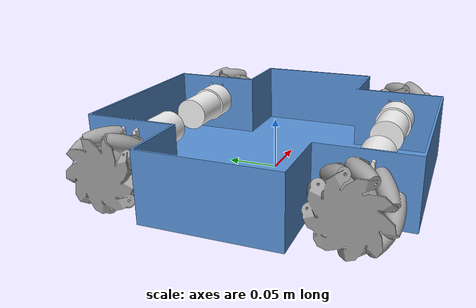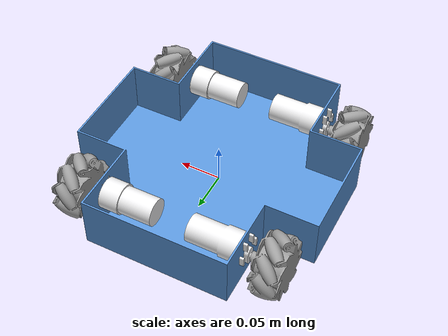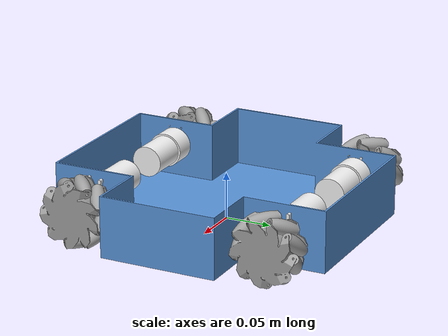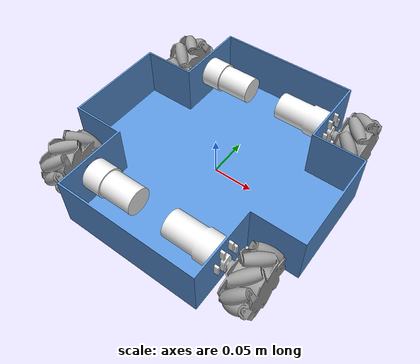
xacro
<?xml version="1.0" ?>
<robot name="mecanum" xmlns:xacro="http://www.ros.org/wiki/xacro">

<xacro:include filename="$(find mecanum_description)/urdf/materials.xacro" />
<xacro:include filename="$(find mecanum_description)/urdf/mecanum.trans" />
<xacro:include filename="$(find mecanum_description)/urdf/mecanum.gazebo" />
<link name="world_map"/>

<link name="base_link">
  <inertial>
    <origin xyz="1.873955310859947e-16 7.808147128583113e-16 0.01805489136483609" rpy="0 0 0"/>
    <mass value="2.2859243336943385"/>
    <inertia ixx="0.021335" iyy="0.019888" izz="0.039192" ixy="0.0" iyz="-0.0" ixz="0.0"/>
  </inertial>
  <visual>
    <origin xyz="0 0 0" rpy="0 0 0"/>
    <geometry>
      <mesh filename="package://mecanum_description/meshes/base_link.stl" scale="0.001 0.001 0.001"/>
    </geometry>
    <material name="aluminum_anodized_glossy_blue"/>
  </visual>
  <collision>
    <origin xyz="0 0 0" rpy="0 0 0"/>
    <geometry>
      <mesh filename="package://mecanum_description/meshes/base_link.stl" scale="0.001 0.001 0.001"/>
    </geometry>
  </collision>
</link>

<link name="Wheel_Motor_v8__3__1">
  <inertial>
    <origin xyz="-0.02895347584776023 -1.8749999902700765e-07 0.006877507255732572" rpy="0 0 0"/>
    <mass value="0.502933680999153"/>
    <inertia ixx="7.6e-05" iyy="0.00024" izz="0.000239" ixy="-0.0" iyz="0.0" ixz="2e-06"/>
  </inertial>
  <visual>
    <origin xyz="-0.086916 -0.106958 -0.03048" rpy="0 0 0"/>
    <geometry>
      <mesh filename="package://mecanum_description/meshes/Wheel_Motor_v8__3__1.stl" scale="0.001 0.001 0.001"/>
    </geometry>
    <material name="aluminum_satin"/>
  </visual>
  <collision>
    <origin xyz="-0.086916 -0.106958 -0.03048" rpy="0 0 0"/>
    <geometry>
      <mesh filename="package://mecanum_description/meshes/Wheel_Motor_v8__3__1.stl" scale="0.001 0.001 0.001"/>
    </geometry>
  </collision>
</link>

<link name="Wheel_Motor_v8__2__1">
  <inertial>
    <origin xyz="0.02895347584776023 -1.8750000098377573e-07 0.006877507255732572" rpy="0 0 0"/>
    <mass value="0.502933680999153"/>
    <inertia ixx="7.6e-05" iyy="0.00024" izz="0.000239" ixy="-0.0" iyz="-0.0" ixz="-2e-06"/>
  </inertial>
  <visual>
    <origin xyz="0.086916 -0.106958 -0.03048" rpy="0 0 0"/>
    <geometry>
      <mesh filename="package://mecanum_description/meshes/Wheel_Motor_v8__2__1.stl" scale="0.001 0.001 0.001"/>
    </geometry>
    <material name="aluminum_satin"/>
  </visual>
  <collision>
    <origin xyz="0.086916 -0.106958 -0.03048" rpy="0 0 0"/>
    <geometry>
      <mesh filename="package://mecanum_description/meshes/Wheel_Motor_v8__2__1.stl" scale="0.001 0.001 0.001"/>
    </geometry>
  </collision>
</link>

<link name="Wheel_Motor_v8__1__1">
  <inertial>
    <origin xyz="-0.028953475847760257 0.0005996017531267744 0.00685133626424822" rpy="0 0 0"/>
    <mass value="0.502933680999153"/>
    <inertia ixx="7.6e-05" iyy="0.00024" izz="0.000239" ixy="0.0" iyz="-0.0" ixz="2e-06"/>
  </inertial>
  <visual>
    <origin xyz="-0.086916 0.106958 -0.03048" rpy="0 0 0"/>
    <geometry>
      <mesh filename="package://mecanum_description/meshes/Wheel_Motor_v8__1__1.stl" scale="0.001 0.001 0.001"/>
    </geometry>
    <material name="aluminum_satin"/>
  </visual>
  <collision>
    <origin xyz="-0.086916 0.106958 -0.03048" rpy="0 0 0"/>
    <geometry>
      <mesh filename="package://mecanum_description/meshes/Wheel_Motor_v8__1__1.stl" scale="0.001 0.001 0.001"/>
    </geometry>
  </collision>
</link>

<link name="Wheel_Motor_v8_1">
  <inertial>
    <origin xyz="0.02895347584776023 1.8749999902700765e-07 0.006877507255732586" rpy="0 0 0"/>
    <mass value="0.502933680999153"/>
    <inertia ixx="7.6e-05" iyy="0.00024" izz="0.000239" ixy="-0.0" iyz="-0.0" ixz="-2e-06"/>
  </inertial>
  <visual>
    <origin xyz="0.086916 0.106958 -0.03048" rpy="0 0 0"/>
    <geometry>
      <mesh filename="package://mecanum_description/meshes/Wheel_Motor_v8_1.stl" scale="0.001 0.001 0.001"/>
    </geometry>
    <material name="aluminum_satin"/>
  </visual>
  <collision>
    <origin xyz="0.086916 0.106958 -0.03048" rpy="0 0 0"/>
    <geometry>
      <mesh filename="package://mecanum_description/meshes/Wheel_Motor_v8_1.stl" scale="0.001 0.001 0.001"/>
    </geometry>
  </collision>
</link>

<link name="Left_75mm_Mecanum_Wheel_B_v2_1">
  <inertial>
    <origin xyz="0.02678367075021032 1.699869142252064e-07 -5.004068940467343e-09" rpy="0 0 0"/>
    <mass value="0.7615045822081437"/>
    <inertia ixx="0.000428" iyy="0.00028" izz="0.00028" ixy="-0.0" iyz="-0.0" ixz="0.0"/>
  </inertial>
  <visual>
    <origin xyz="-0.095916 0.106958 -0.03048" rpy="0 0 0"/>
    <geometry>
      <mesh filename="package://mecanum_description/meshes/Left_75mm_Mecanum_Wheel_B_v2_1.stl" scale="0.001 0.001 0.001"/>
    </geometry>
    <material name="steel_satin"/>
  </visual>
  <collision>
    <origin xyz="-0.095916 0.106958 -0.03048" rpy="0 0 0"/>
    <geometry>
      <mesh filename="package://mecanum_description/meshes/Left_75mm_Mecanum_Wheel_B_v2_1.stl" scale="0.001 0.001 0.001"/>
    </geometry>
  </collision>
</link>

<link name="Left_75mm_Mecanum_Wheel_A_v4_1">
  <inertial>
    <origin xyz="0.02678367075025534 -1.704896370746667e-07 -6.5114325216442115e-09" rpy="0 0 0"/>
    <mass value="0.7615045822081584"/>
    <inertia ixx="0.000428" iyy="0.00028" izz="0.00028" ixy="0.0" iyz="0.0" ixz="0.0"/>
  </inertial>
  <visual>
    <origin xyz="-0.095916 -0.106958 -0.03048" rpy="0 0 0"/>
    <geometry>
      <mesh filename="package://mecanum_description/meshes/Left_75mm_Mecanum_Wheel_A_v4_1.stl" scale="0.001 0.001 0.001"/>
    </geometry>
    <material name="steel_satin"/>
  </visual>
  <collision>
    <origin xyz="-0.095916 -0.106958 -0.03048" rpy="0 0 0"/>
    <geometry>
      <mesh filename="package://mecanum_description/meshes/Left_75mm_Mecanum_Wheel_A_v4_1.stl" scale="0.001 0.001 0.001"/>
    </geometry>
  </collision>
</link>

<link name="Left_75mm_Mecanum_Wheel_A_v4__1__1">
  <inertial>
    <origin xyz="-0.02678367075025541 -2.0451036299162784e-07 -6.511432538991446e-09" rpy="0 0 0"/>
    <mass value="0.7615045822081584"/>
    <inertia ixx="0.000428" iyy="0.00028" izz="0.00028" ixy="0.0" iyz="-0.0" ixz="-0.0"/>
  </inertial>
  <visual>
    <origin xyz="0.095916 -0.106958 -0.03048" rpy="0 0 0"/>
    <geometry>
      <mesh filename="package://mecanum_description/meshes/Left_75mm_Mecanum_Wheel_A_v4__1__1.stl" scale="0.001 0.001 0.001"/>
    </geometry>
    <material name="steel_satin"/>
  </visual>
  <collision>
    <origin xyz="0.095916 -0.106958 -0.03048" rpy="0 0 0"/>
    <geometry>
      <mesh filename="package://mecanum_description/meshes/Left_75mm_Mecanum_Wheel_A_v4__1__1.stl" scale="0.001 0.001 0.001"/>
    </geometry>
  </collision>
</link>

<link name="Left_75mm_Mecanum_Wheel_B_v2__1__1">
  <inertial>
    <origin xyz="-0.026783670750210292 2.0451030971480044e-07 -6.5113929803573e-09" rpy="0 0 0"/>
    <mass value="0.761504582208144"/>
    <inertia ixx="0.000428" iyy="0.00028" izz="0.00028" ixy="-0.0" iyz="0.0" ixz="-0.0"/>
  </inertial>
  <visual>
    <origin xyz="0.095916 0.106958 -0.03048" rpy="0 0 0"/>
    <geometry>
      <mesh filename="package://mecanum_description/meshes/Left_75mm_Mecanum_Wheel_B_v2__1__1.stl" scale="0.001 0.001 0.001"/>
    </geometry>
    <material name="steel_satin"/>
  </visual>
  <collision>
    <origin xyz="0.095916 0.106958 -0.03048" rpy="0 0 0"/>
    <geometry>
      <mesh filename="package://mecanum_description/meshes/Left_75mm_Mecanum_Wheel_B_v2__1__1.stl" scale="0.001 0.001 0.001"/>
    </geometry>
  </collision>
</link>

<joint name="3d_free_move" type="planar">
  <origin xyz="0 0 0" rpy="0 0 0"/>
  <parent link="world_map"/>
  <child link="base_link"/>
</joint>

<joint name="Rigid 47" type="fixed">
  <origin xyz="0.086916 0.106958 0.03048" rpy="0 0 0"/>
  <parent link="base_link"/>
  <child link="Wheel_Motor_v8__3__1"/>
</joint>

<joint name="Rigid 48" type="fixed">
  <origin xyz="-0.086916 0.106958 0.03048" rpy="0 0 0"/>
  <parent link="base_link"/>
  <child link="Wheel_Motor_v8__2__1"/>
</joint>

<joint name="Rigid 49" type="fixed">
  <origin xyz="0.086916 -0.106958 0.03048" rpy="0 0 0"/>
  <parent link="base_link"/>
  <child link="Wheel_Motor_v8__1__1"/>
</joint>

<joint name="Rigid 50" type="fixed">
  <origin xyz="-0.086916 -0.106958 0.03048" rpy="0 0 0"/>
  <parent link="base_link"/>
  <child link="Wheel_Motor_v8_1"/>
</joint>

<joint name="Revolute 51" type="continuous">
  <origin xyz="0.009 0.0 0.0" rpy="0 0 0"/>
  <parent link="Wheel_Motor_v8__1__1"/>
  <child link="Left_75mm_Mecanum_Wheel_B_v2_1"/>
  <axis xyz="-1.0 0.0 0.0"/>
</joint>

<joint name="Revolute 52" type="continuous">
  <origin xyz="0.009 0.0 0.0" rpy="0 0 0"/>
  <parent link="Wheel_Motor_v8__3__1"/>
  <child link="Left_75mm_Mecanum_Wheel_A_v4_1"/>
  <axis xyz="-1.0 0.0 0.0"/>
</joint>

<joint name="Revolute 53" type="continuous">
  <origin xyz="-0.009 0.0 0.0" rpy="0 0 0"/>
  <parent link="Wheel_Motor_v8__2__1"/>
  <child link="Left_75mm_Mecanum_Wheel_A_v4__1__1"/>
  <axis xyz="1.0 0.0 0.0"/>
</joint>

<joint name="Revolute 54" type="continuous">
  <origin xyz="-0.009 0.0 0.0" rpy="0 0 0"/>
  <parent link="Wheel_Motor_v8_1"/>
  <child link="Left_75mm_Mecanum_Wheel_B_v2__1__1"/>
  <axis xyz="1.0 0.0 0.0"/>
</joint>

</robot>

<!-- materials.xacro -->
<robot name="mecanum" xmlns:xacro="http://www.ros.org/wiki/xacro" >

<material name="silver_default">
  <color rgba="0.700 0.700 0.700 1.000"/>
</material>
<material name="aluminum_anodized_glossy_blue">
  <color rgba="0.34901960784313724 0.5843137254901961 0.8549019607843137 1.0"/>
</material>
<material name="steel_satin">
  <color rgba="0.6274509803921569 0.6274509803921569 0.6274509803921569 1.0"/>
</material>
<material name="aluminum_satin">
  <color rgba="0.9607843137254902 0.9607843137254902 0.9647058823529412 1.0"/>
</material>

</robot>

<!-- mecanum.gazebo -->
<robot name="mecanum" xmlns:xacro="http://www.ros.org/wiki/xacro" >

<xacro:property name="body_color" value="Gazebo/Silver" />

<gazebo>
  <plugin name="control" filename="libgazebo_ros_control.so"/>
</gazebo>
<gazebo reference="base_link">
  <material>${body_color}</material>
  <mu1>0.2</mu1>
  <mu2>0.2</mu2>
  <selfCollide>true</selfCollide>
  <gravity>true</gravity>
</gazebo>

<gazebo reference="Wheel_Motor_v8__3__1">
  <material>${body_color}</material>
  <mu1>0.2</mu1>
  <mu2>0.2</mu2>
  <selfCollide>true</selfCollide>
</gazebo>

<gazebo reference="Wheel_Motor_v8__2__1">
  <material>${body_color}</material>
  <mu1>0.2</mu1>
  <mu2>0.2</mu2>
  <selfCollide>true</selfCollide>
</gazebo>

<gazebo reference="Wheel_Motor_v8__1__1">
  <material>${body_color}</material>
  <mu1>0.2</mu1>
  <mu2>0.2</mu2>
  <selfCollide>true</selfCollide>
</gazebo>

<gazebo reference="Wheel_Motor_v8_1">
  <material>${body_color}</material>
  <mu1>0.2</mu1>
  <mu2>0.2</mu2>
  <selfCollide>true</selfCollide>
</gazebo>

<gazebo reference="Left_75mm_Mecanum_Wheel_B_v2_1">
  <material>${body_color}</material>
  <mu1>0.2</mu1>
  <mu2>0.2</mu2>
  <selfCollide>true</selfCollide>
</gazebo>

<gazebo reference="Left_75mm_Mecanum_Wheel_A_v4_1">
  <material>${body_color}</material>
  <mu1>0.2</mu1>
  <mu2>0.2</mu2>
  <selfCollide>true</selfCollide>
</gazebo>

<gazebo reference="Left_75mm_Mecanum_Wheel_A_v4__1__1">
  <material>${body_color}</material>
  <mu1>0.2</mu1>
  <mu2>0.2</mu2>
  <selfCollide>true</selfCollide>
</gazebo>

<gazebo reference="Left_75mm_Mecanum_Wheel_B_v2__1__1">
  <material>${body_color}</material>
  <mu1>0.2</mu1>
  <mu2>0.2</mu2>
  <selfCollide>true</selfCollide>
</gazebo>

</robot>
